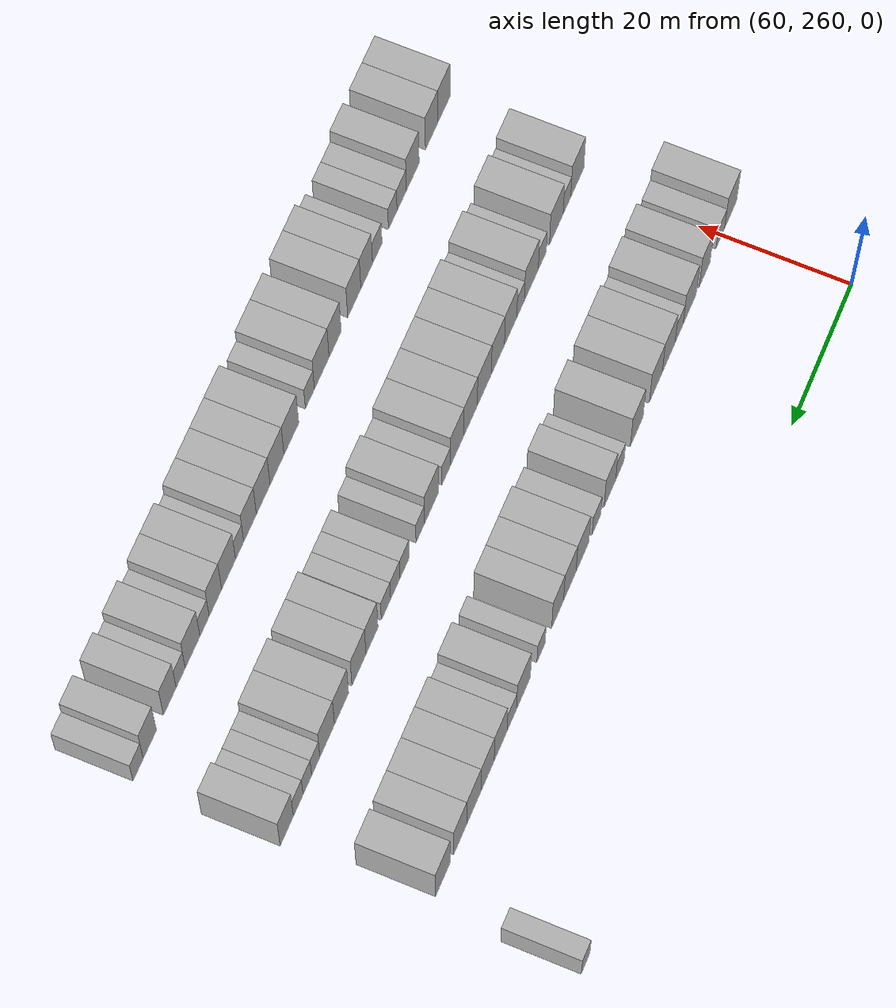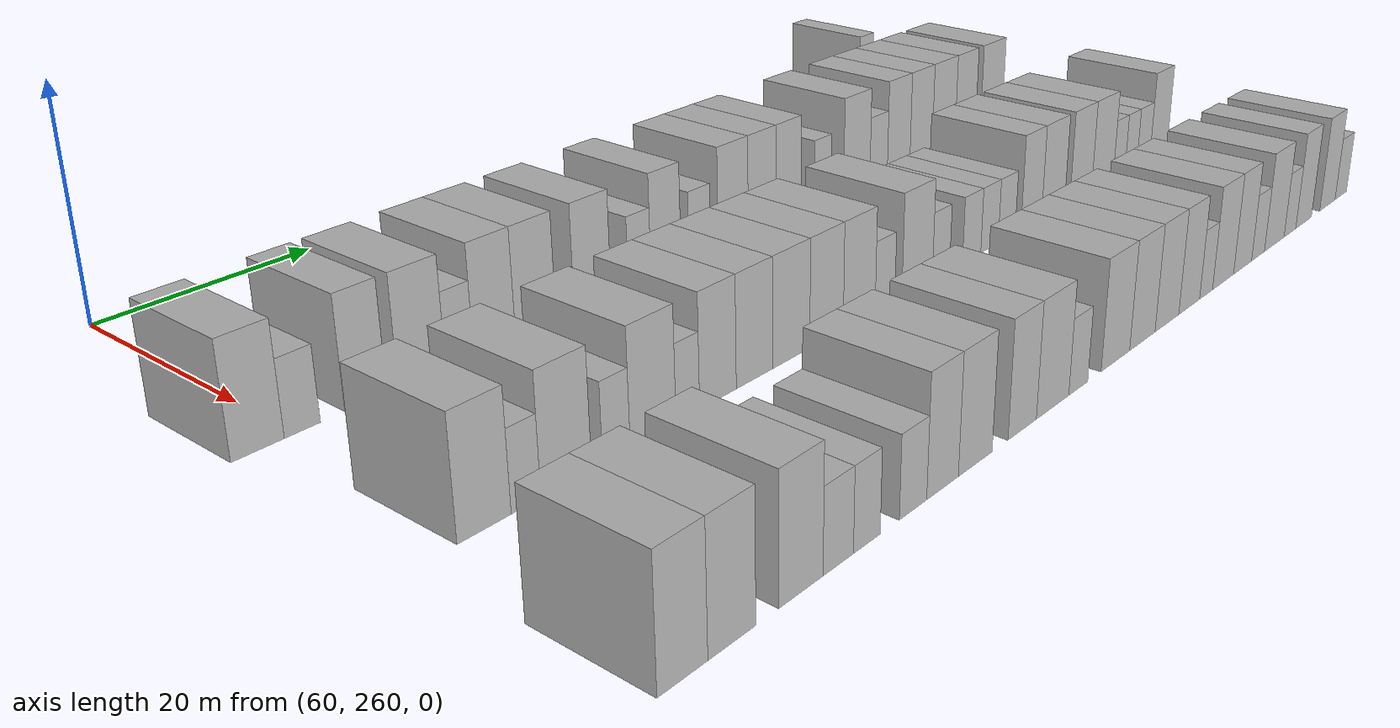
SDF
<sdf version="1.6">
 <world name="default">
  <model name="building_505">
   <static>1</static>
   <pose>63.0000 351.3005 0 0.000000 0.000000 0.000000</pose>
   <link name="link">
    <pose>0 0 3.00 0 0 0</pose>
    <collision name="collision"><geometry><box><size>10.0000 2.6510 6.0000</size></box></geometry></collision>
    <visual name="visual">
     <cast_shadows>0</cast_shadows>
     <geometry><box><size>10.0000 2.6510 6.0000</size></box></geometry>
     <material>
      <script>
       <uri>model://HANNAS_wall/materials/scripts</uri>
       <uri>model://HANNAS_wall/materials/textures</uri>
       <name>vrc/HANNAS_wall</name>
      </script>
     </material>
    </visual>
   </link>
  </model>
  <model name="building_664">
   <static>1</static>
   <pose>82.0000 257.0781 0 0.000000 0.000000 0.000000</pose>
   <link name="link">
    <pose>0 0 4.50 0 0 0</pose>
    <collision name="collision"><geometry><box><size>10.0000 4.0922 9.0000</size></box></geometry></collision>
    <visual name="visual">
     <cast_shadows>0</cast_shadows>
     <geometry><box><size>10.0000 4.0922 9.0000</size></box></geometry>
     <material>
      <script>
       <uri>model://HANNAS_wall/materials/scripts</uri>
       <uri>model://HANNAS_wall/materials/textures</uri>
       <name>vrc/HANNAS_wall</name>
      </script>
     </material>
    </visual>
   </link>
  </model>
  <model name="building_665">
   <static>1</static>
   <pose>82.0000 260.5660 0 0.000000 0.000000 0.000000</pose>
   <link name="link">
    <pose>0 0 3.00 0 0 0</pose>
    <collision name="collision"><geometry><box><size>10.0000 2.8836 6.0000</size></box></geometry></collision>
    <visual name="visual">
     <cast_shadows>0</cast_shadows>
     <geometry><box><size>10.0000 2.8836 6.0000</size></box></geometry>
     <material>
      <script>
       <uri>model://HANNAS_wall/materials/scripts</uri>
       <uri>model://HANNAS_wall/materials/textures</uri>
       <name>vrc/HANNAS_wall</name>
      </script>
     </material>
    </visual>
   </link>
  </model>
  <model name="building_666">
   <static>1</static>
   <pose>82.0000 265.8149 0 0.000000 0.000000 0.000000</pose>
   <link name="link">
    <pose>0 0 4.50 0 0 0</pose>
    <collision name="collision"><geometry><box><size>10.0000 3.6142 9.0000</size></box></geometry></collision>
    <visual name="visual">
     <cast_shadows>0</cast_shadows>
     <geometry><box><size>10.0000 3.6142 9.0000</size></box></geometry>
     <material>
      <script>
       <uri>model://HANNAS_wall/materials/scripts</uri>
       <uri>model://HANNAS_wall/materials/textures</uri>
       <name>vrc/HANNAS_wall</name>
      </script>
     </material>
    </visual>
   </link>
  </model>
  <model name="building_667">
   <static>1</static>
   <pose>82.0000 270.7839 0 0.000000 0.000000 0.000000</pose>
   <link name="link">
    <pose>0 0 4.50 0 0 0</pose>
    <collision name="collision"><geometry><box><size>10.0000 4.3238 9.0000</size></box></geometry></collision>
    <visual name="visual">
     <cast_shadows>0</cast_shadows>
     <geometry><box><size>10.0000 4.3238 9.0000</size></box></geometry>
     <material>
      <script>
       <uri>model://HANNAS_wall/materials/scripts</uri>
       <uri>model://HANNAS_wall/materials/textures</uri>
       <name>vrc/HANNAS_wall</name>
      </script>
     </material>
    </visual>
   </link>
  </model>
  <model name="building_668">
   <static>1</static>
   <pose>82.0000 274.2811 0 0.000000 0.000000 0.000000</pose>
   <link name="link">
    <pose>0 0 3.00 0 0 0</pose>
    <collision name="collision"><geometry><box><size>10.0000 2.6706 6.0000</size></box></geometry></collision>
    <visual name="visual">
     <cast_shadows>0</cast_shadows>
     <geometry><box><size>10.0000 2.6706 6.0000</size></box></geometry>
     <material>
      <script>
       <uri>model://HANNAS_wall/materials/scripts</uri>
       <uri>model://HANNAS_wall/materials/textures</uri>
       <name>vrc/HANNAS_wall</name>
      </script>
     </material>
    </visual>
   </link>
  </model>
  <model name="building_669">
   <static>1</static>
   <pose>82.0000 277.6978 0 0.000000 0.000000 0.000000</pose>
   <link name="link">
    <pose>0 0 4.50 0 0 0</pose>
    <collision name="collision"><geometry><box><size>10.0000 4.1629 9.0000</size></box></geometry></collision>
    <visual name="visual">
     <cast_shadows>0</cast_shadows>
     <geometry><box><size>10.0000 4.1629 9.0000</size></box></geometry>
     <material>
      <script>
       <uri>model://HANNAS_wall/materials/scripts</uri>
       <uri>model://HANNAS_wall/materials/textures</uri>
       <name>vrc/HANNAS_wall</name>
      </script>
     </material>
    </visual>
   </link>
  </model>
  <model name="building_670">
   <static>1</static>
   <pose>82.0000 281.8951 0 0.000000 0.000000 0.000000</pose>
   <link name="link">
    <pose>0 0 4.50 0 0 0</pose>
    <collision name="collision"><geometry><box><size>10.0000 4.2315 9.0000</size></box></geometry></collision>
    <visual name="visual">
     <cast_shadows>0</cast_shadows>
     <geometry><box><size>10.0000 4.2315 9.0000</size></box></geometry>
     <material>
      <script>
       <uri>model://HANNAS_wall/materials/scripts</uri>
       <uri>model://HANNAS_wall/materials/textures</uri>
       <name>vrc/HANNAS_wall</name>
      </script>
     </material>
    </visual>
   </link>
  </model>
  <model name="building_671">
   <static>1</static>
   <pose>82.0000 288.0804 0 0.000000 0.000000 0.000000</pose>
   <link name="link">
    <pose>0 0 4.50 0 0 0</pose>
    <collision name="collision"><geometry><box><size>10.0000 4.1391 9.0000</size></box></geometry></collision>
    <visual name="visual">
     <cast_shadows>0</cast_shadows>
     <geometry><box><size>10.0000 4.1391 9.0000</size></box></geometry>
     <material>
      <script>
       <uri>model://HANNAS_wall/materials/scripts</uri>
       <uri>model://HANNAS_wall/materials/textures</uri>
       <name>vrc/HANNAS_wall</name>
      </script>
     </material>
    </visual>
   </link>
  </model>
  <model name="building_672">
   <static>1</static>
   <pose>82.0000 293.5081 0 0.000000 0.000000 0.000000</pose>
   <link name="link">
    <pose>0 0 3.00 0 0 0</pose>
    <collision name="collision"><geometry><box><size>10.0000 2.7165 6.0000</size></box></geometry></collision>
    <visual name="visual">
     <cast_shadows>0</cast_shadows>
     <geometry><box><size>10.0000 2.7165 6.0000</size></box></geometry>
     <material>
      <script>
       <uri>model://HANNAS_wall/materials/scripts</uri>
       <uri>model://HANNAS_wall/materials/textures</uri>
       <name>vrc/HANNAS_wall</name>
      </script>
     </material>
    </visual>
   </link>
  </model>
  <model name="building_673">
   <static>1</static>
   <pose>82.0000 296.7300 0 0.000000 0.000000 0.000000</pose>
   <link name="link">
    <pose>0 0 4.50 0 0 0</pose>
    <collision name="collision"><geometry><box><size>10.0000 3.7271 9.0000</size></box></geometry></collision>
    <visual name="visual">
     <cast_shadows>0</cast_shadows>
     <geometry><box><size>10.0000 3.7271 9.0000</size></box></geometry>
     <material>
      <script>
       <uri>model://HANNAS_wall/materials/scripts</uri>
       <uri>model://HANNAS_wall/materials/textures</uri>
       <name>vrc/HANNAS_wall</name>
      </script>
     </material>
    </visual>
   </link>
  </model>
  <model name="building_674">
   <static>1</static>
   <pose>82.0000 301.0017 0 0.000000 0.000000 0.000000</pose>
   <link name="link">
    <pose>0 0 3.00 0 0 0</pose>
    <collision name="collision"><geometry><box><size>10.0000 2.8164 6.0000</size></box></geometry></collision>
    <visual name="visual">
     <cast_shadows>0</cast_shadows>
     <geometry><box><size>10.0000 2.8164 6.0000</size></box></geometry>
     <material>
      <script>
       <uri>model://HANNAS_wall/materials/scripts</uri>
       <uri>model://HANNAS_wall/materials/textures</uri>
       <name>vrc/HANNAS_wall</name>
      </script>
     </material>
    </visual>
   </link>
  </model>
  <model name="building_675">
   <static>1</static>
   <pose>82.0000 305.4564 0 0.000000 0.000000 0.000000</pose>
   <link name="link">
    <pose>0 0 4.50 0 0 0</pose>
    <collision name="collision"><geometry><box><size>10.0000 4.0930 9.0000</size></box></geometry></collision>
    <visual name="visual">
     <cast_shadows>0</cast_shadows>
     <geometry><box><size>10.0000 4.0930 9.0000</size></box></geometry>
     <material>
      <script>
       <uri>model://HANNAS_wall/materials/scripts</uri>
       <uri>model://HANNAS_wall/materials/textures</uri>
       <name>vrc/HANNAS_wall</name>
      </script>
     </material>
    </visual>
   </link>
  </model>
  <model name="building_676">
   <static>1</static>
   <pose>82.0000 309.4624 0 0.000000 0.000000 0.000000</pose>
   <link name="link">
    <pose>0 0 4.50 0 0 0</pose>
    <collision name="collision"><geometry><box><size>10.0000 3.9190 9.0000</size></box></geometry></collision>
    <visual name="visual">
     <cast_shadows>0</cast_shadows>
     <geometry><box><size>10.0000 3.9190 9.0000</size></box></geometry>
     <material>
      <script>
       <uri>model://HANNAS_wall/materials/scripts</uri>
       <uri>model://HANNAS_wall/materials/textures</uri>
       <name>vrc/HANNAS_wall</name>
      </script>
     </material>
    </visual>
   </link>
  </model>
  <model name="building_677">
   <static>1</static>
   <pose>82.0000 313.2742 0 0.000000 0.000000 0.000000</pose>
   <link name="link">
    <pose>0 0 4.50 0 0 0</pose>
    <collision name="collision"><geometry><box><size>10.0000 3.7045 9.0000</size></box></geometry></collision>
    <visual name="visual">
     <cast_shadows>0</cast_shadows>
     <geometry><box><size>10.0000 3.7045 9.0000</size></box></geometry>
     <material>
      <script>
       <uri>model://HANNAS_wall/materials/scripts</uri>
       <uri>model://HANNAS_wall/materials/textures</uri>
       <name>vrc/HANNAS_wall</name>
      </script>
     </material>
    </visual>
   </link>
  </model>
  <model name="building_678">
   <static>1</static>
   <pose>82.0000 318.4309 0 0.000000 0.000000 0.000000</pose>
   <link name="link">
    <pose>0 0 3.00 0 0 0</pose>
    <collision name="collision"><geometry><box><size>10.0000 2.6089 6.0000</size></box></geometry></collision>
    <visual name="visual">
     <cast_shadows>0</cast_shadows>
     <geometry><box><size>10.0000 2.6089 6.0000</size></box></geometry>
     <material>
      <script>
       <uri>model://HANNAS_wall/materials/scripts</uri>
       <uri>model://HANNAS_wall/materials/textures</uri>
       <name>vrc/HANNAS_wall</name>
      </script>
     </material>
    </visual>
   </link>
  </model>
  <model name="building_679">
   <static>1</static>
   <pose>82.0000 323.8771 0 0.000000 0.000000 0.000000</pose>
   <link name="link">
    <pose>0 0 4.50 0 0 0</pose>
    <collision name="collision"><geometry><box><size>10.0000 4.2834 9.0000</size></box></geometry></collision>
    <visual name="visual">
     <cast_shadows>0</cast_shadows>
     <geometry><box><size>10.0000 4.2834 9.0000</size></box></geometry>
     <material>
      <script>
       <uri>model://HANNAS_wall/materials/scripts</uri>
       <uri>model://HANNAS_wall/materials/textures</uri>
       <name>vrc/HANNAS_wall</name>
      </script>
     </material>
    </visual>
   </link>
  </model>
  <model name="building_680">
   <static>1</static>
   <pose>82.0000 327.4893 0 0.000000 0.000000 0.000000</pose>
   <link name="link">
    <pose>0 0 3.00 0 0 0</pose>
    <collision name="collision"><geometry><box><size>10.0000 2.9410 6.0000</size></box></geometry></collision>
    <visual name="visual">
     <cast_shadows>0</cast_shadows>
     <geometry><box><size>10.0000 2.9410 6.0000</size></box></geometry>
     <material>
      <script>
       <uri>model://HANNAS_wall/materials/scripts</uri>
       <uri>model://HANNAS_wall/materials/textures</uri>
       <name>vrc/HANNAS_wall</name>
      </script>
     </material>
    </visual>
   </link>
  </model>
  <model name="building_681">
   <static>1</static>
   <pose>82.0000 330.9286 0 0.000000 0.000000 0.000000</pose>
   <link name="link">
    <pose>0 0 4.50 0 0 0</pose>
    <collision name="collision"><geometry><box><size>10.0000 3.9376 9.0000</size></box></geometry></collision>
    <visual name="visual">
     <cast_shadows>0</cast_shadows>
     <geometry><box><size>10.0000 3.9376 9.0000</size></box></geometry>
     <material>
      <script>
       <uri>model://HANNAS_wall/materials/scripts</uri>
       <uri>model://HANNAS_wall/materials/textures</uri>
       <name>vrc/HANNAS_wall</name>
      </script>
     </material>
    </visual>
   </link>
  </model>
  <model name="building_682">
   <static>1</static>
   <pose>82.0000 334.9068 0 0.000000 0.000000 0.000000</pose>
   <link name="link">
    <pose>0 0 4.50 0 0 0</pose>
    <collision name="collision"><geometry><box><size>10.0000 4.0189 9.0000</size></box></geometry></collision>
    <visual name="visual">
     <cast_shadows>0</cast_shadows>
     <geometry><box><size>10.0000 4.0189 9.0000</size></box></geometry>
     <material>
      <script>
       <uri>model://HANNAS_wall/materials/scripts</uri>
       <uri>model://HANNAS_wall/materials/textures</uri>
       <name>vrc/HANNAS_wall</name>
      </script>
     </material>
    </visual>
   </link>
  </model>
  <model name="building_683">
   <static>1</static>
   <pose>82.0000 339.0632 0 0.000000 0.000000 0.000000</pose>
   <link name="link">
    <pose>0 0 4.50 0 0 0</pose>
    <collision name="collision"><geometry><box><size>10.0000 4.2939 9.0000</size></box></geometry></collision>
    <visual name="visual">
     <cast_shadows>0</cast_shadows>
     <geometry><box><size>10.0000 4.2939 9.0000</size></box></geometry>
     <material>
      <script>
       <uri>model://HANNAS_wall/materials/scripts</uri>
       <uri>model://HANNAS_wall/materials/textures</uri>
       <name>vrc/HANNAS_wall</name>
      </script>
     </material>
    </visual>
   </link>
  </model>
  <model name="building_684">
   <static>1</static>
   <pose>82.0000 343.1948 0 0.000000 0.000000 0.000000</pose>
   <link name="link">
    <pose>0 0 4.50 0 0 0</pose>
    <collision name="collision"><geometry><box><size>10.0000 3.9693 9.0000</size></box></geometry></collision>
    <visual name="visual">
     <cast_shadows>0</cast_shadows>
     <geometry><box><size>10.0000 3.9693 9.0000</size></box></geometry>
     <material>
      <script>
       <uri>model://HANNAS_wall/materials/scripts</uri>
       <uri>model://HANNAS_wall/materials/textures</uri>
       <name>vrc/HANNAS_wall</name>
      </script>
     </material>
    </visual>
   </link>
  </model>
  <model name="building_685">
   <static>1</static>
   <pose>82.0000 348.3897 0 0.000000 0.000000 0.000000</pose>
   <link name="link">
    <pose>0 0 4.50 0 0 0</pose>
    <collision name="collision"><geometry><box><size>10.0000 4.4205 9.0000</size></box></geometry></collision>
    <visual name="visual">
     <cast_shadows>0</cast_shadows>
     <geometry><box><size>10.0000 4.4205 9.0000</size></box></geometry>
     <material>
      <script>
       <uri>model://HANNAS_wall/materials/scripts</uri>
       <uri>model://HANNAS_wall/materials/textures</uri>
       <name>vrc/HANNAS_wall</name>
      </script>
     </material>
    </visual>
   </link>
  </model>
  <model name="building_822">
   <static>1</static>
   <pose>101.0000 260.3045 0 0.000000 0.000000 0.000000</pose>
   <link name="link">
    <pose>0 0 4.50 0 0 0</pose>
    <collision name="collision"><geometry><box><size>10.0000 4.2953 9.0000</size></box></geometry></collision>
    <visual name="visual">
     <cast_shadows>0</cast_shadows>
     <geometry><box><size>10.0000 4.2953 9.0000</size></box></geometry>
     <material>
      <script>
       <uri>model://HANNAS_wall/materials/scripts</uri>
       <uri>model://HANNAS_wall/materials/textures</uri>
       <name>vrc/HANNAS_wall</name>
      </script>
     </material>
    </visual>
   </link>
  </model>
  <model name="building_823">
   <static>1</static>
   <pose>101.0000 263.6875 0 0.000000 0.000000 0.000000</pose>
   <link name="link">
    <pose>0 0 3.00 0 0 0</pose>
    <collision name="collision"><geometry><box><size>10.0000 2.4708 6.0000</size></box></geometry></collision>
    <visual name="visual">
     <cast_shadows>0</cast_shadows>
     <geometry><box><size>10.0000 2.4708 6.0000</size></box></geometry>
     <material>
      <script>
       <uri>model://HANNAS_wall/materials/scripts</uri>
       <uri>model://HANNAS_wall/materials/textures</uri>
       <name>vrc/HANNAS_wall</name>
      </script>
     </material>
    </visual>
   </link>
  </model>
  <model name="building_824">
   <static>1</static>
   <pose>101.0000 267.1434 0 0.000000 0.000000 0.000000</pose>
   <link name="link">
    <pose>0 0 4.50 0 0 0</pose>
    <collision name="collision"><geometry><box><size>10.0000 4.4410 9.0000</size></box></geometry></collision>
    <visual name="visual">
     <cast_shadows>0</cast_shadows>
     <geometry><box><size>10.0000 4.4410 9.0000</size></box></geometry>
     <material>
      <script>
       <uri>model://HANNAS_wall/materials/scripts</uri>
       <uri>model://HANNAS_wall/materials/textures</uri>
       <name>vrc/HANNAS_wall</name>
      </script>
     </material>
    </visual>
   </link>
  </model>
  <model name="building_825">
   <static>1</static>
   <pose>101.0000 271.6538 0 0.000000 0.000000 0.000000</pose>
   <link name="link">
    <pose>0 0 3.00 0 0 0</pose>
    <collision name="collision"><geometry><box><size>10.0000 2.5798 6.0000</size></box></geometry></collision>
    <visual name="visual">
     <cast_shadows>0</cast_shadows>
     <geometry><box><size>10.0000 2.5798 6.0000</size></box></geometry>
     <material>
      <script>
       <uri>model://HANNAS_wall/materials/scripts</uri>
       <uri>model://HANNAS_wall/materials/textures</uri>
       <name>vrc/HANNAS_wall</name>
      </script>
     </material>
    </visual>
   </link>
  </model>
  <model name="building_826">
   <static>1</static>
   <pose>101.0000 275.1827 0 0.000000 0.000000 0.000000</pose>
   <link name="link">
    <pose>0 0 4.50 0 0 0</pose>
    <collision name="collision"><geometry><box><size>10.0000 4.4780 9.0000</size></box></geometry></collision>
    <visual name="visual">
     <cast_shadows>0</cast_shadows>
     <geometry><box><size>10.0000 4.4780 9.0000</size></box></geometry>
     <material>
      <script>
       <uri>model://HANNAS_wall/materials/scripts</uri>
       <uri>model://HANNAS_wall/materials/textures</uri>
       <name>vrc/HANNAS_wall</name>
      </script>
     </material>
    </visual>
   </link>
  </model>
  <model name="building_827">
   <static>1</static>
   <pose>101.0000 278.6391 0 0.000000 0.000000 0.000000</pose>
   <link name="link">
    <pose>0 0 3.00 0 0 0</pose>
    <collision name="collision"><geometry><box><size>10.0000 2.4349 6.0000</size></box></geometry></collision>
    <visual name="visual">
     <cast_shadows>0</cast_shadows>
     <geometry><box><size>10.0000 2.4349 6.0000</size></box></geometry>
     <material>
      <script>
       <uri>model://HANNAS_wall/materials/scripts</uri>
       <uri>model://HANNAS_wall/materials/textures</uri>
       <name>vrc/HANNAS_wall</name>
      </script>
     </material>
    </visual>
   </link>
  </model>
  <model name="building_828">
   <static>1</static>
   <pose>101.0000 281.8183 0 0.000000 0.000000 0.000000</pose>
   <link name="link">
    <pose>0 0 4.50 0 0 0</pose>
    <collision name="collision"><geometry><box><size>10.0000 3.9236 9.0000</size></box></geometry></collision>
    <visual name="visual">
     <cast_shadows>0</cast_shadows>
     <geometry><box><size>10.0000 3.9236 9.0000</size></box></geometry>
     <material>
      <script>
       <uri>model://HANNAS_wall/materials/scripts</uri>
       <uri>model://HANNAS_wall/materials/textures</uri>
       <name>vrc/HANNAS_wall</name>
      </script>
     </material>
    </visual>
   </link>
  </model>
  <model name="building_829">
   <static>1</static>
   <pose>101.0000 285.8279 0 0.000000 0.000000 0.000000</pose>
   <link name="link">
    <pose>0 0 4.50 0 0 0</pose>
    <collision name="collision"><geometry><box><size>10.0000 4.0956 9.0000</size></box></geometry></collision>
    <visual name="visual">
     <cast_shadows>0</cast_shadows>
     <geometry><box><size>10.0000 4.0956 9.0000</size></box></geometry>
     <material>
      <script>
       <uri>model://HANNAS_wall/materials/scripts</uri>
       <uri>model://HANNAS_wall/materials/textures</uri>
       <name>vrc/HANNAS_wall</name>
      </script>
     </material>
    </visual>
   </link>
  </model>
  <model name="building_830">
   <static>1</static>
   <pose>101.0000 290.0892 0 0.000000 0.000000 0.000000</pose>
   <link name="link">
    <pose>0 0 4.50 0 0 0</pose>
    <collision name="collision"><geometry><box><size>10.0000 4.4270 9.0000</size></box></geometry></collision>
    <visual name="visual">
     <cast_shadows>0</cast_shadows>
     <geometry><box><size>10.0000 4.4270 9.0000</size></box></geometry>
     <material>
      <script>
       <uri>model://HANNAS_wall/materials/scripts</uri>
       <uri>model://HANNAS_wall/materials/textures</uri>
       <name>vrc/HANNAS_wall</name>
      </script>
     </material>
    </visual>
   </link>
  </model>
  <model name="building_831">
   <static>1</static>
   <pose>101.0000 294.4005 0 0.000000 0.000000 0.000000</pose>
   <link name="link">
    <pose>0 0 4.50 0 0 0</pose>
    <collision name="collision"><geometry><box><size>10.0000 4.1956 9.0000</size></box></geometry></collision>
    <visual name="visual">
     <cast_shadows>0</cast_shadows>
     <geometry><box><size>10.0000 4.1956 9.0000</size></box></geometry>
     <material>
      <script>
       <uri>model://HANNAS_wall/materials/scripts</uri>
       <uri>model://HANNAS_wall/materials/textures</uri>
       <name>vrc/HANNAS_wall</name>
      </script>
     </material>
    </visual>
   </link>
  </model>
  <model name="building_832">
   <static>1</static>
   <pose>101.0000 298.6007 0 0.000000 0.000000 0.000000</pose>
   <link name="link">
    <pose>0 0 4.50 0 0 0</pose>
    <collision name="collision"><geometry><box><size>10.0000 4.2046 9.0000</size></box></geometry></collision>
    <visual name="visual">
     <cast_shadows>0</cast_shadows>
     <geometry><box><size>10.0000 4.2046 9.0000</size></box></geometry>
     <material>
      <script>
       <uri>model://HANNAS_wall/materials/scripts</uri>
       <uri>model://HANNAS_wall/materials/textures</uri>
       <name>vrc/HANNAS_wall</name>
      </script>
     </material>
    </visual>
   </link>
  </model>
  <model name="building_833">
   <static>1</static>
   <pose>101.0000 302.0493 0 0.000000 0.000000 0.000000</pose>
   <link name="link">
    <pose>0 0 3.00 0 0 0</pose>
    <collision name="collision"><geometry><box><size>10.0000 2.6928 6.0000</size></box></geometry></collision>
    <visual name="visual">
     <cast_shadows>0</cast_shadows>
     <geometry><box><size>10.0000 2.6928 6.0000</size></box></geometry>
     <material>
      <script>
       <uri>model://HANNAS_wall/materials/scripts</uri>
       <uri>model://HANNAS_wall/materials/textures</uri>
       <name>vrc/HANNAS_wall</name>
      </script>
     </material>
    </visual>
   </link>
  </model>
  <model name="building_834">
   <static>1</static>
   <pose>101.0000 306.5944 0 0.000000 0.000000 0.000000</pose>
   <link name="link">
    <pose>0 0 4.50 0 0 0</pose>
    <collision name="collision"><geometry><box><size>10.0000 4.3973 9.0000</size></box></geometry></collision>
    <visual name="visual">
     <cast_shadows>0</cast_shadows>
     <geometry><box><size>10.0000 4.3973 9.0000</size></box></geometry>
     <material>
      <script>
       <uri>model://HANNAS_wall/materials/scripts</uri>
       <uri>model://HANNAS_wall/materials/textures</uri>
       <name>vrc/HANNAS_wall</name>
      </script>
     </material>
    </visual>
   </link>
  </model>
  <model name="building_835">
   <static>1</static>
   <pose>101.0000 310.0917 0 0.000000 0.000000 0.000000</pose>
   <link name="link">
    <pose>0 0 3.00 0 0 0</pose>
    <collision name="collision"><geometry><box><size>10.0000 2.5972 6.0000</size></box></geometry></collision>
    <visual name="visual">
     <cast_shadows>0</cast_shadows>
     <geometry><box><size>10.0000 2.5972 6.0000</size></box></geometry>
     <material>
      <script>
       <uri>model://HANNAS_wall/materials/scripts</uri>
       <uri>model://HANNAS_wall/materials/textures</uri>
       <name>vrc/HANNAS_wall</name>
      </script>
     </material>
    </visual>
   </link>
  </model>
  <model name="building_836">
   <static>1</static>
   <pose>101.0000 314.8396 0 0.000000 0.000000 0.000000</pose>
   <link name="link">
    <pose>0 0 3.00 0 0 0</pose>
    <collision name="collision"><geometry><box><size>10.0000 2.8987 6.0000</size></box></geometry></collision>
    <visual name="visual">
     <cast_shadows>0</cast_shadows>
     <geometry><box><size>10.0000 2.8987 6.0000</size></box></geometry>
     <material>
      <script>
       <uri>model://HANNAS_wall/materials/scripts</uri>
       <uri>model://HANNAS_wall/materials/textures</uri>
       <name>vrc/HANNAS_wall</name>
      </script>
     </material>
    </visual>
   </link>
  </model>
  <model name="building_837">
   <static>1</static>
   <pose>101.0000 317.7115 0 0.000000 0.000000 0.000000</pose>
   <link name="link">
    <pose>0 0 3.00 0 0 0</pose>
    <collision name="collision"><geometry><box><size>10.0000 2.8451 6.0000</size></box></geometry></collision>
    <visual name="visual">
     <cast_shadows>0</cast_shadows>
     <geometry><box><size>10.0000 2.8451 6.0000</size></box></geometry>
     <material>
      <script>
       <uri>model://HANNAS_wall/materials/scripts</uri>
       <uri>model://HANNAS_wall/materials/textures</uri>
       <name>vrc/HANNAS_wall</name>
      </script>
     </material>
    </visual>
   </link>
  </model>
  <model name="building_838">
   <static>1</static>
   <pose>101.0000 320.5487 0 0.000000 0.000000 0.000000</pose>
   <link name="link">
    <pose>0 0 3.00 0 0 0</pose>
    <collision name="collision"><geometry><box><size>10.0000 2.8293 6.0000</size></box></geometry></collision>
    <visual name="visual">
     <cast_shadows>0</cast_shadows>
     <geometry><box><size>10.0000 2.8293 6.0000</size></box></geometry>
     <material>
      <script>
       <uri>model://HANNAS_wall/materials/scripts</uri>
       <uri>model://HANNAS_wall/materials/textures</uri>
       <name>vrc/HANNAS_wall</name>
      </script>
     </material>
    </visual>
   </link>
  </model>
  <model name="building_839">
   <static>1</static>
   <pose>101.0000 324.7793 0 0.000000 0.000000 0.000000</pose>
   <link name="link">
    <pose>0 0 4.50 0 0 0</pose>
    <collision name="collision"><geometry><box><size>10.0000 3.6318 9.0000</size></box></geometry></collision>
    <visual name="visual">
     <cast_shadows>0</cast_shadows>
     <geometry><box><size>10.0000 3.6318 9.0000</size></box></geometry>
     <material>
      <script>
       <uri>model://HANNAS_wall/materials/scripts</uri>
       <uri>model://HANNAS_wall/materials/textures</uri>
       <name>vrc/HANNAS_wall</name>
      </script>
     </material>
    </visual>
   </link>
  </model>
  <model name="building_840">
   <static>1</static>
   <pose>101.0000 328.6963 0 0.000000 0.000000 0.000000</pose>
   <link name="link">
    <pose>0 0 4.50 0 0 0</pose>
    <collision name="collision"><geometry><box><size>10.0000 4.2021 9.0000</size></box></geometry></collision>
    <visual name="visual">
     <cast_shadows>0</cast_shadows>
     <geometry><box><size>10.0000 4.2021 9.0000</size></box></geometry>
     <material>
      <script>
       <uri>model://HANNAS_wall/materials/scripts</uri>
       <uri>model://HANNAS_wall/materials/textures</uri>
       <name>vrc/HANNAS_wall</name>
      </script>
     </material>
    </visual>
   </link>
  </model>
  <model name="building_841">
   <static>1</static>
   <pose>101.0000 333.8916 0 0.000000 0.000000 0.000000</pose>
   <link name="link">
    <pose>0 0 4.50 0 0 0</pose>
    <collision name="collision"><geometry><box><size>10.0000 4.1886 9.0000</size></box></geometry></collision>
    <visual name="visual">
     <cast_shadows>0</cast_shadows>
     <geometry><box><size>10.0000 4.1886 9.0000</size></box></geometry>
     <material>
      <script>
       <uri>model://HANNAS_wall/materials/scripts</uri>
       <uri>model://HANNAS_wall/materials/textures</uri>
       <name>vrc/HANNAS_wall</name>
      </script>
     </material>
    </visual>
   </link>
  </model>
  <model name="building_842">
   <static>1</static>
   <pose>101.0000 338.1541 0 0.000000 0.000000 0.000000</pose>
   <link name="link">
    <pose>0 0 4.50 0 0 0</pose>
    <collision name="collision"><geometry><box><size>10.0000 4.3362 9.0000</size></box></geometry></collision>
    <visual name="visual">
     <cast_shadows>0</cast_shadows>
     <geometry><box><size>10.0000 4.3362 9.0000</size></box></geometry>
     <material>
      <script>
       <uri>model://HANNAS_wall/materials/scripts</uri>
       <uri>model://HANNAS_wall/materials/textures</uri>
       <name>vrc/HANNAS_wall</name>
      </script>
     </material>
    </visual>
   </link>
  </model>
  <model name="building_843">
   <static>1</static>
   <pose>101.0000 341.5327 0 0.000000 0.000000 0.000000</pose>
   <link name="link">
    <pose>0 0 3.00 0 0 0</pose>
    <collision name="collision"><geometry><box><size>10.0000 2.4210 6.0000</size></box></geometry></collision>
    <visual name="visual">
     <cast_shadows>0</cast_shadows>
     <geometry><box><size>10.0000 2.4210 6.0000</size></box></geometry>
     <material>
      <script>
       <uri>model://HANNAS_wall/materials/scripts</uri>
       <uri>model://HANNAS_wall/materials/textures</uri>
       <name>vrc/HANNAS_wall</name>
      </script>
     </material>
    </visual>
   </link>
  </model>
  <model name="building_844">
   <static>1</static>
   <pose>101.0000 344.0124 0 0.000000 0.000000 0.000000</pose>
   <link name="link">
    <pose>0 0 3.00 0 0 0</pose>
    <collision name="collision"><geometry><box><size>10.0000 2.5383 6.0000</size></box></geometry></collision>
    <visual name="visual">
     <cast_shadows>0</cast_shadows>
     <geometry><box><size>10.0000 2.5383 6.0000</size></box></geometry>
     <material>
      <script>
       <uri>model://HANNAS_wall/materials/scripts</uri>
       <uri>model://HANNAS_wall/materials/textures</uri>
       <name>vrc/HANNAS_wall</name>
      </script>
     </material>
    </visual>
   </link>
  </model>
  <model name="building_845">
   <static>1</static>
   <pose>101.0000 346.6951 0 0.000000 0.000000 0.000000</pose>
   <link name="link">
    <pose>0 0 3.00 0 0 0</pose>
    <collision name="collision"><geometry><box><size>10.0000 2.8272 6.0000</size></box></geometry></collision>
    <visual name="visual">
     <cast_shadows>0</cast_shadows>
     <geometry><box><size>10.0000 2.8272 6.0000</size></box></geometry>
     <material>
      <script>
       <uri>model://HANNAS_wall/materials/scripts</uri>
       <uri>model://HANNAS_wall/materials/textures</uri>
       <name>vrc/HANNAS_wall</name>
      </script>
     </material>
    </visual>
   </link>
  </model>
  <model name="building_846">
   <static>1</static>
   <pose>101.0000 350.0354 0 0.000000 0.000000 0.000000</pose>
   <link name="link">
    <pose>0 0 4.50 0 0 0</pose>
    <collision name="collision"><geometry><box><size>10.0000 3.8534 9.0000</size></box></geometry></collision>
    <visual name="visual">
     <cast_shadows>0</cast_shadows>
     <geometry><box><size>10.0000 3.8534 9.0000</size></box></geometry>
     <material>
      <script>
       <uri>model://HANNAS_wall/materials/scripts</uri>
       <uri>model://HANNAS_wall/materials/textures</uri>
       <name>vrc/HANNAS_wall</name>
      </script>
     </material>
    </visual>
   </link>
  </model>
  <model name="building_997">
   <static>1</static>
   <pose>120.0000 257.4183 0 0.000000 0.000000 0.000000</pose>
   <link name="link">
    <pose>0 0 4.50 0 0 0</pose>
    <collision name="collision"><geometry><box><size>10.0000 3.9392 9.0000</size></box></geometry></collision>
    <visual name="visual">
     <cast_shadows>0</cast_shadows>
     <geometry><box><size>10.0000 3.9392 9.0000</size></box></geometry>
     <material>
      <script>
       <uri>model://HANNAS_wall/materials/scripts</uri>
       <uri>model://HANNAS_wall/materials/textures</uri>
       <name>vrc/HANNAS_wall</name>
      </script>
     </material>
    </visual>
   </link>
  </model>
  <model name="building_998">
   <static>1</static>
   <pose>120.0000 261.3739 0 0.000000 0.000000 0.000000</pose>
   <link name="link">
    <pose>0 0 4.50 0 0 0</pose>
    <collision name="collision"><geometry><box><size>10.0000 3.9720 9.0000</size></box></geometry></collision>
    <visual name="visual">
     <cast_shadows>0</cast_shadows>
     <geometry><box><size>10.0000 3.9720 9.0000</size></box></geometry>
     <material>
      <script>
       <uri>model://HANNAS_wall/materials/scripts</uri>
       <uri>model://HANNAS_wall/materials/textures</uri>
       <name>vrc/HANNAS_wall</name>
      </script>
     </material>
    </visual>
   </link>
  </model>
  <model name="building_999">
   <static>1</static>
   <pose>120.0000 267.3851 0 0.000000 0.000000 0.000000</pose>
   <link name="link">
    <pose>0 0 4.50 0 0 0</pose>
    <collision name="collision"><geometry><box><size>10.0000 4.0504 9.0000</size></box></geometry></collision>
    <visual name="visual">
     <cast_shadows>0</cast_shadows>
     <geometry><box><size>10.0000 4.0504 9.0000</size></box></geometry>
     <material>
      <script>
       <uri>model://HANNAS_wall/materials/scripts</uri>
       <uri>model://HANNAS_wall/materials/textures</uri>
       <name>vrc/HANNAS_wall</name>
      </script>
     </material>
    </visual>
   </link>
  </model>
  <model name="building_1000">
   <static>1</static>
   <pose>120.0000 270.8780 0 0.000000 0.000000 0.000000</pose>
   <link name="link">
    <pose>0 0 3.00 0 0 0</pose>
    <collision name="collision"><geometry><box><size>10.0000 2.9354 6.0000</size></box></geometry></collision>
    <visual name="visual">
     <cast_shadows>0</cast_shadows>
     <geometry><box><size>10.0000 2.9354 6.0000</size></box></geometry>
     <material>
      <script>
       <uri>model://HANNAS_wall/materials/scripts</uri>
       <uri>model://HANNAS_wall/materials/textures</uri>
       <name>vrc/HANNAS_wall</name>
      </script>
     </material>
    </visual>
   </link>
  </model>
  <model name="building_1001">
   <static>1</static>
   <pose>120.0000 273.6994 0 0.000000 0.000000 0.000000</pose>
   <link name="link">
    <pose>0 0 3.00 0 0 0</pose>
    <collision name="collision"><geometry><box><size>10.0000 2.7072 6.0000</size></box></geometry></collision>
    <visual name="visual">
     <cast_shadows>0</cast_shadows>
     <geometry><box><size>10.0000 2.7072 6.0000</size></box></geometry>
     <material>
      <script>
       <uri>model://HANNAS_wall/materials/scripts</uri>
       <uri>model://HANNAS_wall/materials/textures</uri>
       <name>vrc/HANNAS_wall</name>
      </script>
     </material>
    </visual>
   </link>
  </model>
  <model name="building_1002">
   <static>1</static>
   <pose>120.0000 278.5444 0 0.000000 0.000000 0.000000</pose>
   <link name="link">
    <pose>0 0 3.00 0 0 0</pose>
    <collision name="collision"><geometry><box><size>10.0000 2.9828 6.0000</size></box></geometry></collision>
    <visual name="visual">
     <cast_shadows>0</cast_shadows>
     <geometry><box><size>10.0000 2.9828 6.0000</size></box></geometry>
     <material>
      <script>
       <uri>model://HANNAS_wall/materials/scripts</uri>
       <uri>model://HANNAS_wall/materials/textures</uri>
       <name>vrc/HANNAS_wall</name>
      </script>
     </material>
    </visual>
   </link>
  </model>
  <model name="building_1003">
   <static>1</static>
   <pose>120.0000 281.8466 0 0.000000 0.000000 0.000000</pose>
   <link name="link">
    <pose>0 0 4.50 0 0 0</pose>
    <collision name="collision"><geometry><box><size>10.0000 3.6216 9.0000</size></box></geometry></collision>
    <visual name="visual">
     <cast_shadows>0</cast_shadows>
     <geometry><box><size>10.0000 3.6216 9.0000</size></box></geometry>
     <material>
      <script>
       <uri>model://HANNAS_wall/materials/scripts</uri>
       <uri>model://HANNAS_wall/materials/textures</uri>
       <name>vrc/HANNAS_wall</name>
      </script>
     </material>
    </visual>
   </link>
  </model>
  <model name="building_1004">
   <static>1</static>
   <pose>120.0000 285.6967 0 0.000000 0.000000 0.000000</pose>
   <link name="link">
    <pose>0 0 4.50 0 0 0</pose>
    <collision name="collision"><geometry><box><size>10.0000 4.0786 9.0000</size></box></geometry></collision>
    <visual name="visual">
     <cast_shadows>0</cast_shadows>
     <geometry><box><size>10.0000 4.0786 9.0000</size></box></geometry>
     <material>
      <script>
       <uri>model://HANNAS_wall/materials/scripts</uri>
       <uri>model://HANNAS_wall/materials/textures</uri>
       <name>vrc/HANNAS_wall</name>
      </script>
     </material>
    </visual>
   </link>
  </model>
  <model name="building_1005">
   <static>1</static>
   <pose>120.0000 291.5946 0 0.000000 0.000000 0.000000</pose>
   <link name="link">
    <pose>0 0 4.50 0 0 0</pose>
    <collision name="collision"><geometry><box><size>10.0000 3.7172 9.0000</size></box></geometry></collision>
    <visual name="visual">
     <cast_shadows>0</cast_shadows>
     <geometry><box><size>10.0000 3.7172 9.0000</size></box></geometry>
     <material>
      <script>
       <uri>model://HANNAS_wall/materials/scripts</uri>
       <uri>model://HANNAS_wall/materials/textures</uri>
       <name>vrc/HANNAS_wall</name>
      </script>
     </material>
    </visual>
   </link>
  </model>
  <model name="building_1006">
   <static>1</static>
   <pose>120.0000 295.6975 0 0.000000 0.000000 0.000000</pose>
   <link name="link">
    <pose>0 0 4.50 0 0 0</pose>
    <collision name="collision"><geometry><box><size>10.0000 4.4885 9.0000</size></box></geometry></collision>
    <visual name="visual">
     <cast_shadows>0</cast_shadows>
     <geometry><box><size>10.0000 4.4885 9.0000</size></box></geometry>
     <material>
      <script>
       <uri>model://HANNAS_wall/materials/scripts</uri>
       <uri>model://HANNAS_wall/materials/textures</uri>
       <name>vrc/HANNAS_wall</name>
      </script>
     </material>
    </visual>
   </link>
  </model>
  <model name="building_1007">
   <static>1</static>
   <pose>120.0000 299.3185 0 0.000000 0.000000 0.000000</pose>
   <link name="link">
    <pose>0 0 3.00 0 0 0</pose>
    <collision name="collision"><geometry><box><size>10.0000 2.7534 6.0000</size></box></geometry></collision>
    <visual name="visual">
     <cast_shadows>0</cast_shadows>
     <geometry><box><size>10.0000 2.7534 6.0000</size></box></geometry>
     <material>
      <script>
       <uri>model://HANNAS_wall/materials/scripts</uri>
       <uri>model://HANNAS_wall/materials/textures</uri>
       <name>vrc/HANNAS_wall</name>
      </script>
     </material>
    </visual>
   </link>
  </model>
  <model name="building_1008">
   <static>1</static>
   <pose>120.0000 304.9214 0 0.000000 0.000000 0.000000</pose>
   <link name="link">
    <pose>0 0 4.50 0 0 0</pose>
    <collision name="collision"><geometry><box><size>10.0000 4.4525 9.0000</size></box></geometry></collision>
    <visual name="visual">
     <cast_shadows>0</cast_shadows>
     <geometry><box><size>10.0000 4.4525 9.0000</size></box></geometry>
     <material>
      <script>
       <uri>model://HANNAS_wall/materials/scripts</uri>
       <uri>model://HANNAS_wall/materials/textures</uri>
       <name>vrc/HANNAS_wall</name>
      </script>
     </material>
    </visual>
   </link>
  </model>
  <model name="building_1009">
   <static>1</static>
   <pose>120.0000 309.2386 0 0.000000 0.000000 0.000000</pose>
   <link name="link">
    <pose>0 0 4.50 0 0 0</pose>
    <collision name="collision"><geometry><box><size>10.0000 4.1818 9.0000</size></box></geometry></collision>
    <visual name="visual">
     <cast_shadows>0</cast_shadows>
     <geometry><box><size>10.0000 4.1818 9.0000</size></box></geometry>
     <material>
      <script>
       <uri>model://HANNAS_wall/materials/scripts</uri>
       <uri>model://HANNAS_wall/materials/textures</uri>
       <name>vrc/HANNAS_wall</name>
      </script>
     </material>
    </visual>
   </link>
  </model>
  <model name="building_1010">
   <static>1</static>
   <pose>120.0000 313.3771 0 0.000000 0.000000 0.000000</pose>
   <link name="link">
    <pose>0 0 4.50 0 0 0</pose>
    <collision name="collision"><geometry><box><size>10.0000 4.0952 9.0000</size></box></geometry></collision>
    <visual name="visual">
     <cast_shadows>0</cast_shadows>
     <geometry><box><size>10.0000 4.0952 9.0000</size></box></geometry>
     <material>
      <script>
       <uri>model://HANNAS_wall/materials/scripts</uri>
       <uri>model://HANNAS_wall/materials/textures</uri>
       <name>vrc/HANNAS_wall</name>
      </script>
     </material>
    </visual>
   </link>
  </model>
  <model name="building_1011">
   <static>1</static>
   <pose>120.0000 317.3093 0 0.000000 0.000000 0.000000</pose>
   <link name="link">
    <pose>0 0 4.50 0 0 0</pose>
    <collision name="collision"><geometry><box><size>10.0000 3.7692 9.0000</size></box></geometry></collision>
    <visual name="visual">
     <cast_shadows>0</cast_shadows>
     <geometry><box><size>10.0000 3.7692 9.0000</size></box></geometry>
     <material>
      <script>
       <uri>model://HANNAS_wall/materials/scripts</uri>
       <uri>model://HANNAS_wall/materials/textures</uri>
       <name>vrc/HANNAS_wall</name>
      </script>
     </material>
    </visual>
   </link>
  </model>
  <model name="building_1012">
   <static>1</static>
   <pose>120.0000 320.4054 0 0.000000 0.000000 0.000000</pose>
   <link name="link">
    <pose>0 0 3.00 0 0 0</pose>
    <collision name="collision"><geometry><box><size>10.0000 2.4229 6.0000</size></box></geometry></collision>
    <visual name="visual">
     <cast_shadows>0</cast_shadows>
     <geometry><box><size>10.0000 2.4229 6.0000</size></box></geometry>
     <material>
      <script>
       <uri>model://HANNAS_wall/materials/scripts</uri>
       <uri>model://HANNAS_wall/materials/textures</uri>
       <name>vrc/HANNAS_wall</name>
      </script>
     </material>
    </visual>
   </link>
  </model>
  <model name="building_1013">
   <static>1</static>
   <pose>120.0000 323.6679 0 0.000000 0.000000 0.000000</pose>
   <link name="link">
    <pose>0 0 4.50 0 0 0</pose>
    <collision name="collision"><geometry><box><size>10.0000 4.1021 9.0000</size></box></geometry></collision>
    <visual name="visual">
     <cast_shadows>0</cast_shadows>
     <geometry><box><size>10.0000 4.1021 9.0000</size></box></geometry>
     <material>
      <script>
       <uri>model://HANNAS_wall/materials/scripts</uri>
       <uri>model://HANNAS_wall/materials/textures</uri>
       <name>vrc/HANNAS_wall</name>
      </script>
     </material>
    </visual>
   </link>
  </model>
  <model name="building_1014">
   <static>1</static>
   <pose>120.0000 327.5469 0 0.000000 0.000000 0.000000</pose>
   <link name="link">
    <pose>0 0 4.50 0 0 0</pose>
    <collision name="collision"><geometry><box><size>10.0000 3.6559 9.0000</size></box></geometry></collision>
    <visual name="visual">
     <cast_shadows>0</cast_shadows>
     <geometry><box><size>10.0000 3.6559 9.0000</size></box></geometry>
     <material>
      <script>
       <uri>model://HANNAS_wall/materials/scripts</uri>
       <uri>model://HANNAS_wall/materials/textures</uri>
       <name>vrc/HANNAS_wall</name>
      </script>
     </material>
    </visual>
   </link>
  </model>
  <model name="building_1015">
   <static>1</static>
   <pose>120.0000 330.7272 0 0.000000 0.000000 0.000000</pose>
   <link name="link">
    <pose>0 0 3.00 0 0 0</pose>
    <collision name="collision"><geometry><box><size>10.0000 2.7046 6.0000</size></box></geometry></collision>
    <visual name="visual">
     <cast_shadows>0</cast_shadows>
     <geometry><box><size>10.0000 2.7046 6.0000</size></box></geometry>
     <material>
      <script>
       <uri>model://HANNAS_wall/materials/scripts</uri>
       <uri>model://HANNAS_wall/materials/textures</uri>
       <name>vrc/HANNAS_wall</name>
      </script>
     </material>
    </visual>
   </link>
  </model>
  <model name="building_1016">
   <static>1</static>
   <pose>120.0000 334.2208 0 0.000000 0.000000 0.000000</pose>
   <link name="link">
    <pose>0 0 4.50 0 0 0</pose>
    <collision name="collision"><geometry><box><size>10.0000 4.2827 9.0000</size></box></geometry></collision>
    <visual name="visual">
     <cast_shadows>0</cast_shadows>
     <geometry><box><size>10.0000 4.2827 9.0000</size></box></geometry>
     <material>
      <script>
       <uri>model://HANNAS_wall/materials/scripts</uri>
       <uri>model://HANNAS_wall/materials/textures</uri>
       <name>vrc/HANNAS_wall</name>
      </script>
     </material>
    </visual>
   </link>
  </model>
  <model name="building_1017">
   <static>1</static>
   <pose>120.0000 337.6815 0 0.000000 0.000000 0.000000</pose>
   <link name="link">
    <pose>0 0 3.00 0 0 0</pose>
    <collision name="collision"><geometry><box><size>10.0000 2.6387 6.0000</size></box></geometry></collision>
    <visual name="visual">
     <cast_shadows>0</cast_shadows>
     <geometry><box><size>10.0000 2.6387 6.0000</size></box></geometry>
     <material>
      <script>
       <uri>model://HANNAS_wall/materials/scripts</uri>
       <uri>model://HANNAS_wall/materials/textures</uri>
       <name>vrc/HANNAS_wall</name>
      </script>
     </material>
    </visual>
   </link>
  </model>
  <model name="building_1018">
   <static>1</static>
   <pose>120.0000 340.8299 0 0.000000 0.000000 0.000000</pose>
   <link name="link">
    <pose>0 0 4.50 0 0 0</pose>
    <collision name="collision"><geometry><box><size>10.0000 3.6581 9.0000</size></box></geometry></collision>
    <visual name="visual">
     <cast_shadows>0</cast_shadows>
     <geometry><box><size>10.0000 3.6581 9.0000</size></box></geometry>
     <material>
      <script>
       <uri>model://HANNAS_wall/materials/scripts</uri>
       <uri>model://HANNAS_wall/materials/textures</uri>
       <name>vrc/HANNAS_wall</name>
      </script>
     </material>
    </visual>
   </link>
  </model>
  <model name="building_1019">
   <static>1</static>
   <pose>120.0000 346.5558 0 0.000000 0.000000 0.000000</pose>
   <link name="link">
    <pose>0 0 4.50 0 0 0</pose>
    <collision name="collision"><geometry><box><size>10.0000 3.7938 9.0000</size></box></geometry></collision>
    <visual name="visual">
     <cast_shadows>0</cast_shadows>
     <geometry><box><size>10.0000 3.7938 9.0000</size></box></geometry>
     <material>
      <script>
       <uri>model://HANNAS_wall/materials/scripts</uri>
       <uri>model://HANNAS_wall/materials/textures</uri>
       <name>vrc/HANNAS_wall</name>
      </script>
     </material>
    </visual>
   </link>
  </model>
  <model name="building_1020">
   <static>1</static>
   <pose>120.0000 349.9128 0 0.000000 0.000000 0.000000</pose>
   <link name="link">
    <pose>0 0 3.00 0 0 0</pose>
    <collision name="collision"><geometry><box><size>10.0000 2.9202 6.0000</size></box></geometry></collision>
    <visual name="visual">
     <cast_shadows>0</cast_shadows>
     <geometry><box><size>10.0000 2.9202 6.0000</size></box></geometry>
     <material>
      <script>
       <uri>model://HANNAS_wall/materials/scripts</uri>
       <uri>model://HANNAS_wall/materials/textures</uri>
       <name>vrc/HANNAS_wall</name>
      </script>
     </material>
    </visual>
   </link>
  </model>
 </world>
</sdf>
